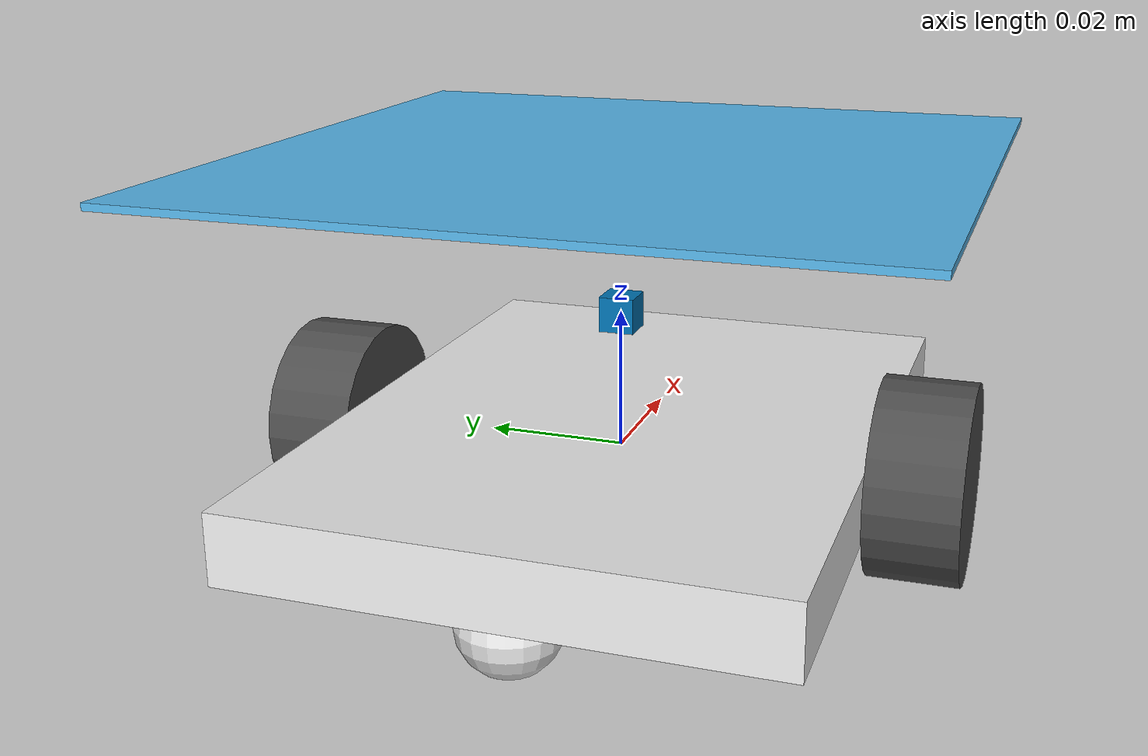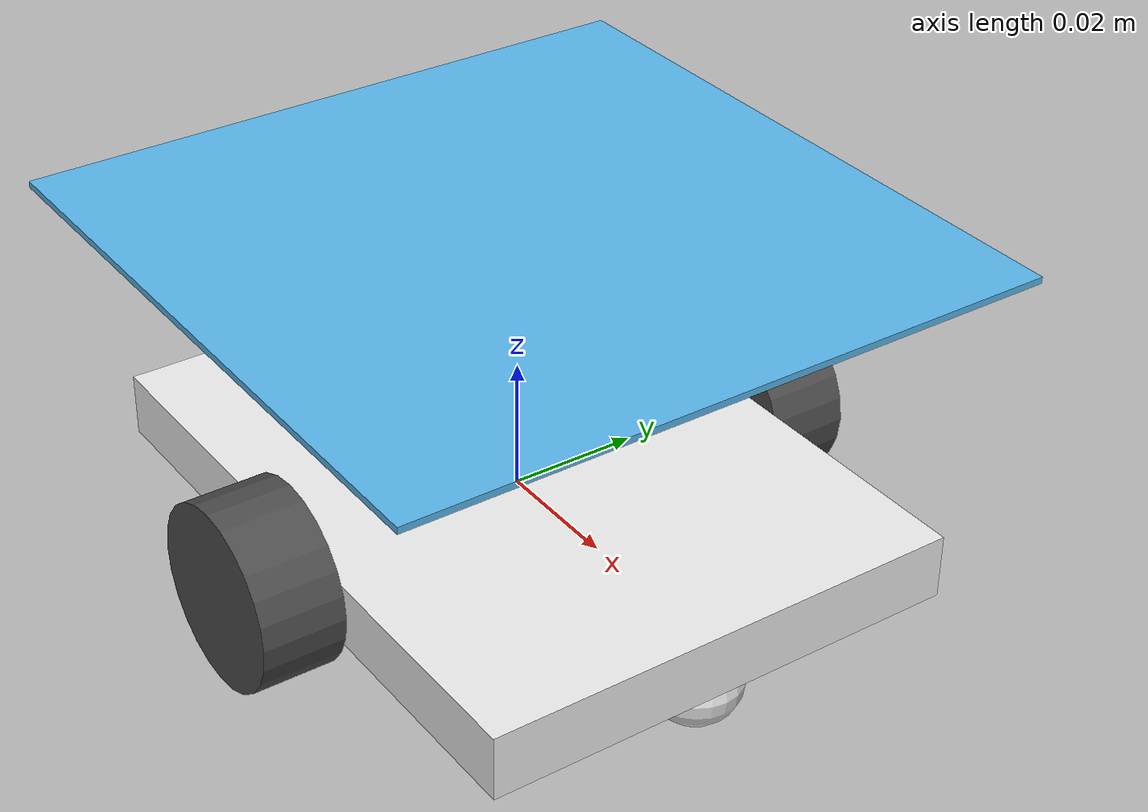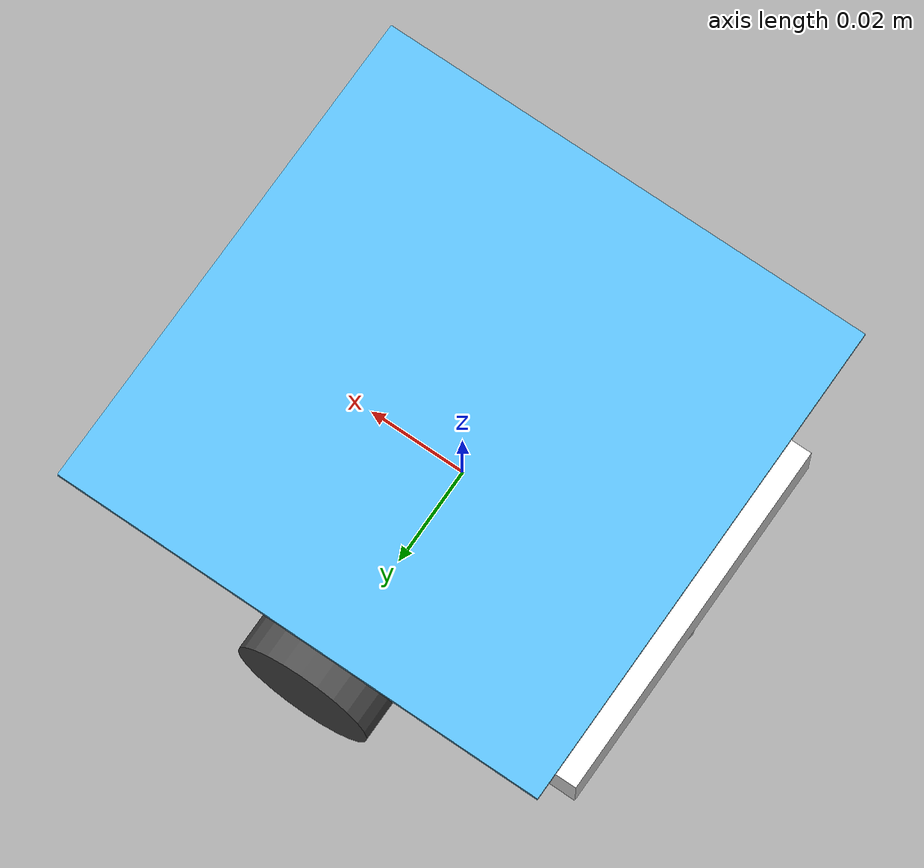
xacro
<?xml version="1.0"?>
<robot name="robot"
    xmlns:xacro="http://www.ros.org/wiki/xacro">
    <!-- INCLUDES -->
    <xacro:include filename="$(find ril_agv_simulator)/urdf/parameters.xacro" />
    <!-- BASE LINK -->
    <link name="base_link">
        <material name="orange"/>
        <!-- pose and inertial -->
        <pose>0 0 0 0 0 0</pose>
        <inertial>
            <origin rpy="0 0 0" xyz="0 0 0"/>
            <mass value="${base_mass}"/>
            <xacro:box_inertia mass="${base_mass}" x="${base_size_x}" y="${base_size_y}" z="${base_size_z}"/>
        </inertial>
        <!-- body -->
        <collision name="base_front_collision">
            <origin rpy="0 0 0" xyz="0 0 0"/>
            <geometry>
                <box size="${base_size_x} ${base_size_y} ${base_size_z}"/>
            </geometry>
        </collision>
        <visual>
            <origin rpy="0 0 0" xyz="0 0 0"/>
            <geometry>
                <box size="${base_size_x} ${base_size_y} ${base_size_z}"/>
            </geometry>
        </visual>
        <!-- caster front -->
        <collision name="caster_front_collision">
            <origin rpy=" 0 0 0" xyz="${base_size_x/2-wheel_radius/2} 0 ${-wheel_radius/2}"/>
            <geometry>
                <sphere radius="${wheel_radius/2}"/>
            </geometry>
            <contact_coefficients/>
            <surface>
                <contact>
                    <ode>
                        <kp>${caster_kp}</kp>
                        <kd>${caster_kd}</kd>
                    </ode>
                </contact>
                <friction>
                    <ode>
                        <mu>${caster_mu}</mu>
                        <mu2>${caster_mu2}</mu2>
                        <slip1>${caster_slip1}</slip1>
                        <slip2>${caster_slip2}</slip2>
                    </ode>
                </friction>
            </surface>
        </collision>
        <visual>
            <origin rpy=" 0 0 0" xyz="${base_size_x/2-wheel_radius/2} 0 ${-wheel_radius/2}"/>
            <geometry>
                <sphere radius="${wheel_radius/2}"/>
            </geometry>
        </visual>
        <!-- caster back -->
        <collision name="caster_back_collision">
            <origin rpy=" 0 0 0" xyz="${-base_size_x/2+wheel_radius/2} 0 ${-wheel_radius/2}"/>
            <geometry>
                <sphere radius="${wheel_radius/2}"/>
            </geometry>
            <contact_coefficients/>
            <surface>
                <contact>
                    <ode>
                        <kp>${caster_kp}</kp>
                        <kd>${caster_kd}</kd>
                    </ode>
                </contact>
                <friction>
                    <ode>
                        <mu>${caster_mu}</mu>
                        <mu2>${caster_mu2}</mu2>
                        <slip1>${caster_slip1}</slip1>
                        <slip2>${caster_slip2}</slip2>
                    </ode>
                </friction>
            </surface>
        </collision>
        <visual>
            <origin rpy=" 0 0 0" xyz="${-base_size_x/2+wheel_radius/2} 0 ${-wheel_radius/2}"/>
            <geometry>
                <sphere radius="${wheel_radius/2}"/>
            </geometry>
        </visual>
    </link>
    <!-- MARKER LINK-->
    <link name="marker_link">
        <visual>
            <origin rpy=" 0 0 0" xyz="0 0 0"/>
            <geometry>
                <box size="${base_size_x} ${base_size_y+2*wheel_width} 0.001"/>
            </geometry>
        </visual>
    </link>
    <!-- MARKER JOINT-->
    <joint name="marker_joint" type="fixed">
        <origin rpy="0 0 0" xyz="0 0 0.042"/>
        <child link="marker_link"/>
        <parent link="base_link"/>
    </joint>
    <!-- LEFT WHEEL LINK -->
    <link name="left_wheel_link">
        <inertial>
            <mass value="${wheel_mass}"/>
            <origin rpy="0 1.5707 1.5707" xyz="0 0 0"/>
            <xacro:cylinder_inertia mass="${wheel_mass}" r="${wheel_radius}" l="${wheel_width}"/>
        </inertial>
        <collision name="left_wheel_collision">
            <origin rpy="0 1.5707 1.5707" xyz="0 0 0"/>
            <geometry>
                <cylinder radius="${wheel_radius}" length="${wheel_width}"/>
            </geometry>
            <surface>
                <contact>
                    <ode>
                        <kp>${wheel_kp}</kp>
                        <kd>${wheel_kd}</kd>
                    </ode>
                </contact>
                <friction>
                    <ode>
                        <mu>${wheel_mu}</mu>
                        <mu2>${wheel_mu2}</mu2>
                        <slip1>${wheel_slip1}</slip1>
                        <slip2>${wheel_slip2}</slip2>
                    </ode>
                </friction>
            </surface>
        </collision>
        <visual>
            <origin rpy="0 1.5707 1.5707" xyz="0 0 0"/>
            <geometry>
                <cylinder radius="${wheel_radius}" length="${wheel_width}"/>
            </geometry>
        </visual>
    </link>
    <!-- LEFT WHEEL JOINT -->
    <joint name="left_motor" type="continuous">
        <origin rpy="0 0 0" xyz="0.0 ${base_size_y/2+wheel_width/2} 0.0"/>
        <child link="left_wheel_link"/>
        <parent link="base_link"/>
        <axis rpy="0 0 0" xyz="0 1 0"/>
        <dynamics damping="${motor_damping}" friction="${motor_friction}"/>
    </joint>
    <!-- RIGHT WHEEL LINK -->
    <link name="right_wheel_link">
        <inertial>
            <mass value="${wheel_mass}"/>
            <origin rpy="0 1.5707 1.5707" xyz="0 0 0"/>
            <cylinder_inertia mass="${wheel_mass}" r="${wheel_radius}" l="${wheel_width}"/>
        </inertial>
        <collision name="right_wheel_collision">
            <origin rpy="0 1.5707 1.5707" xyz="0 0 0"/>
            <geometry>
                <cylinder radius="${wheel_radius}" length="${wheel_width}"/>
            </geometry>
            <surface>
                <contact>
                    <ode>
                        <kp>${wheel_kp}</kp>
                        <kd>${wheel_kd}</kd>
                    </ode>
                </contact>
                <friction>
                    <ode>
                        <mu>${wheel_mu}</mu>
                        <mu2>${wheel_mu2}</mu2>
                        <slip1>${wheel_slip1}</slip1>
                        <slip2>${wheel_slip2}</slip2>
                    </ode>
                </friction>
            </surface>
        </collision>
        <visual>
            <origin rpy="0 1.5707 1.5707" xyz="0 0 0"/>
            <geometry>
                <cylinder radius="${wheel_radius}" length="${wheel_width}"/>
            </geometry>
        </visual>
    </link>
    <!-- RIGHT WHEEL JOINT -->
    <joint name="right_motor" type="continuous">
        <origin rpy="0 0 0" xyz="0 ${-base_size_y/2-wheel_width/2} 0"/>
        <child link="right_wheel_link"/>
        <parent link="base_link"/>
        <axis rpy="0 0 0" xyz="0 1 0"/>
        <dynamics damping="${motor_damping}" friction="${motor_friction}"/>
    </joint>
    <!-- TRANSMISSIONS -->
    <transmission name="left_motor_transmission">
        <type>transmission_interface/SimpleTransmission</type>
        <joint name="left_motor">
            <hardwareInterface>hardware_interface/EffortJointInterface</hardwareInterface>
        </joint>
        <actuator name="left_motor">
            <hardwareInterface>EffortJointInterface</hardwareInterface>
            <mechanicalReduction>1</mechanicalReduction>
        </actuator>
    </transmission>
    <transmission name="right_motor_transmission">
        <type>transmission_interface/SimpleTransmission</type>
        <joint name="right_motor">
            <hardwareInterface>hardware_interface/EffortJointInterface</hardwareInterface>
        </joint>
        <actuator name="right_motor">
            <hardwareInterface>EffortJointInterface</hardwareInterface>
            <mechanicalReduction>1</mechanicalReduction>
        </actuator>
    </transmission>
    <!-- GAZEBO CONTROL -->
    <gazebo>
        <plugin name="differential_drive_controller" filename="libgazebo_ros_diff_drive.so">
            <rosDebugLevel>Debug</rosDebugLevel>
            <publishWheelTF>false</publishWheelTF>
            <robotNamespace>robot_$(arg number)</robotNamespace>
            <publishTf>1</publishTf>
            <publishWheelJointState>false</publishWheelJointState>
            <alwaysOn>true</alwaysOn>
            <updateRate>100.0</updateRate>
            <leftJoint>left_motor</leftJoint>
            <rightJoint>right_motor</rightJoint>
            <wheelSeparation>${base_size_y+wheel_width}</wheelSeparation>
            <wheelDiameter>${2*wheel_radius}</wheelDiameter>
            <broadcastTF>1</broadcastTF>
            <wheelTorque>0.2</wheelTorque>
            <wheelAcceleration>10</wheelAcceleration>
            <commandTopic>cmd_vel</commandTopic>
            <odometryFrame>odom</odometryFrame>
            <odometryTopic>odom</odometryTopic>
            <robotBaseFrame>base_link</robotBaseFrame>
            <legacyMode>false</legacyMode>
            <publishOdomTF>true</publishOdomTF>
            <odometrySource>world</odometrySource>
        </plugin>
    </gazebo>
    <!-- GAZEBO IMU -->
    <link name="imu_link">
        <inertial>
            <mass value="0.001" />
            <origin xyz="0 0 0" />
            <inertia ixx="0.0" ixy="0.0" ixz="0.0" iyy="0.0" iyz="0.0" izz="0.0" />
        </inertial>
        <visual>
            <origin xyz="0 0 0" rpy="0 0 0" />
            <geometry>
                <box size = "0.005 0.005 0.005"/>
            </geometry>
        </visual>
        <collision>
            <geometry>
                <box size = "0.005 0.005 0.005"/>
            </geometry>
        </collision>
    </link>

    <joint name="imu_joint" type="fixed">
        <axis xyz="0 0 0"/>
        <origin xyz="0 0 0.02" rpy="0 0 0" />
        <parent link="base_link"/>
        <child link="imu_link" />
    </joint>

    <gazebo>
        <plugin name="imu_plugin" filename="libgazebo_ros_imu.so">
            <alwaysOn>true</alwaysOn>
            <bodyName>imu_link</bodyName>
            <frameName>imu_frame</frameName>
            <topicName>imu</topicName>
            <serviceName>imu_service</serviceName>
            <gaussianNoise>0.01</gaussianNoise>
            <updateRate>100.0</updateRate>
        </plugin>
    </gazebo>

    <!-- GAZEBO LIDAR -->
    <joint name="hokuyo_joint" type="fixed">
        <axis xyz="0 1 0" />
        <origin xyz="0 0 0" rpy="0 0 0"/>
        <parent link="base_link"/>
        <child link="hokuyo_link"/>
    </joint>

    <!-- Hokuyo Laser -->
    <link name="hokuyo_link">
        <collision>
            <origin xyz="0 0 0" rpy="0 0 0"/>
            <geometry>
                <box size="0.005 0.005 0.005"/>
            </geometry>
        </collision>

        <visual>
            <origin xyz="0 0 0" rpy="0 0 0"/>
            <geometry>
                <box size="0.005 0.005 0.005"/>
            </geometry>
        </visual>

        <inertial>
            <mass value="1e-5" />
            <origin xyz="0 0 0" rpy="0 0 0"/>
            <inertia ixx="1e-6" ixy="0" ixz="0" iyy="1e-6" iyz="0" izz="1e-6" />
        </inertial>
    </link>

    <gazebo reference="hokuyo_link">
        <sensor type="gpu_ray" name="head_hokuyo_sensor">
            <pose>0 0 0 0 0 0</pose>
            <visualize>false</visualize>
            <update_rate>30</update_rate>
            <ray>
                <scan>
                    <horizontal>
                        <samples>720</samples>
                        <resolution>1</resolution>
                        <min_angle>-1.570796</min_angle>
                        <max_angle>1.570796</max_angle>
                    </horizontal>
                </scan>
                <range>
                    <min>0.1</min>
                    <max>3.0</max>
                    <resolution>0.01</resolution>
                </range>
                <noise>
                    <type>gaussian</type>
                    <mean>0.0</mean>
                    <stddev>0.01</stddev>
                </noise>
            </ray>
            <plugin name="gazebo_ros_head_hokuyo_controller" filename="libgazebo_ros_gpu_laser.so">
                <topicName>scan</topicName>
                <frameName>hokuyo_link</frameName>
            </plugin>
        </sensor>
    </gazebo>

    <!-- GAZEBO COLORS -->
    <gazebo reference="base_link">
        <material>Gazebo/White</material>
    </gazebo>
    <gazebo reference="left_wheel_link">
        <material>Gazebo/DarkGrey</material>
    </gazebo>
    <gazebo reference="right_wheel_link">
        <material>Gazebo/DarkGrey</material>
    </gazebo>
    <gazebo reference="marker_link">
        <material>MarkerData_$(arg number)</material>
    </gazebo>
</robot>

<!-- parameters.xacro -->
<robot name="robot"
    xmlns:xacro="http://www.ros.org/wiki/xacro">
    <!-- CYLINDER INERTIA -->
    <xacro:macro name="cylinder_inertia" params="mass r l">
        <inertia ixx="${mass*(3*r*r+l*l)/12}" ixy = "0" ixz = "0" iyy="${mass*(3*r*r+l*l)/12}" iyz = "0" izz="${mass*(r*r)/2}" />
    </xacro:macro>
    <!-- BOX INERTIA -->
    <xacro:macro name="box_inertia" params="mass x y z">
        <inertia ixx="${mass*(y*y+z*z)/12}" ixy = "0" ixz = "0" iyy="${mass*(x*x+z*z)/12}" iyz = "0" izz="${mass*(x*x+y*y)/12}" />
    </xacro:macro>
    <!-- BASE INERTIA -->
    <xacro:property name="base_mass" value="0.150" />
    <xacro:property name="base_size_x" value="0.10" />
    <xacro:property name="base_size_y" value="0.0746" />
    <xacro:property name="base_size_z" value="0.01" />
    <!-- CASTER COLLISION -->
    <xacro:property name="caster_kp" value="10000000" />
    <xacro:property name="caster_kd" value="1.0" />
    <xacro:property name="caster_mu" value="0.0" />
    <xacro:property name="caster_mu2" value="0.0" />
    <xacro:property name="caster_slip1" value="1.0" />
    <xacro:property name="caster_slip2" value="1.0" />
    <!-- WHEEL INERTIA -->
    <xacro:property name="wheel_mass" value="0.50" />
    <xacro:property name="wheel_radius" value="0.014" />
    <xacro:property name="wheel_width" value="0.0127" />
    <!-- WHEEL COLLISION -->
    <xacro:property name="wheel_kp" value="10000000" />
    <xacro:property name="wheel_kd" value="1.0" />
    <xacro:property name="wheel_mu" value="1.0" />
    <xacro:property name="wheel_mu2" value="1.0" />
    <xacro:property name="wheel_slip1" value="0.0" />
    <xacro:property name="wheel_slip2" value="0.0" />
    <!-- WHEEL JOINT -->
    <xacro:property name="motor_damping" value="0.000" />
    <xacro:property name="motor_friction" value="0.00000" />
</robot>
